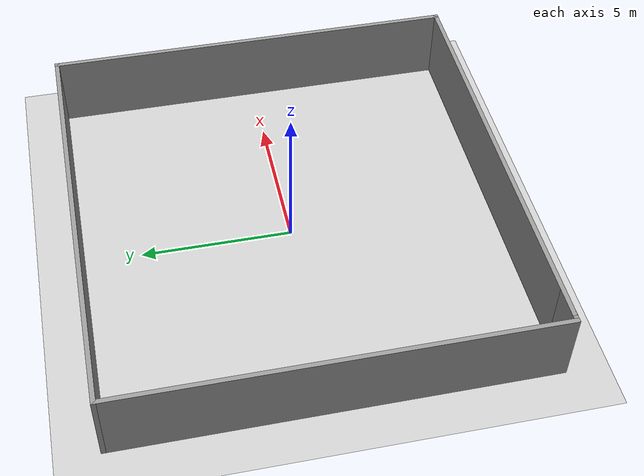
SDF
<sdf version="1.6">
 <world name="default">
  <light name="sun" type="directional">
   <pose>0 0 10 0 -0 0</pose>
   <diffuse>0.8 0.8 0.8 1</diffuse>
   <specular>0.2 0.2 0.2 1</specular>
   <attenuation>
    <range>1000</range>
    <constant>0.9</constant>
    <linear>0.01</linear>
    <quadratic>0.001</quadratic>
   </attenuation>
   <direction>-0.5 0.1 -0.9</direction>
  </light>
  <model name="ground_plane">
   <static>1</static>
   <link name="link">
    <collision name="collision">
     <geometry><plane><normal>0 0 1</normal><size>100 100</size></plane></geometry>
     <surface>
      <contact><collide_bitmask>65535</collide_bitmask></contact>
      <friction><ode><mu>100</mu><mu2>50</mu2></ode></friction>
     </surface>
    </collision>
    <visual name="visual">
     <cast_shadows>0</cast_shadows>
     <geometry><plane><normal>0 0 1</normal><size>100 100</size></plane></geometry>
     <material>
      <script><uri>file://media/materials/scripts/gazebo.material</uri><name>Gazebo/Grey</name></script>
     </material>
    </visual>
   </link>
  </model>
  <gravity>0 0 -9.8</gravity>
  <magnetic_field>6e-06 2.3e-05 -4.2e-05</magnetic_field>
  <atmosphere type="adiabatic"/>
  <physics name="default_physics" default="0" type="ode">
   <max_step_size>0.005</max_step_size>
   <real_time_factor>1</real_time_factor>
   <real_time_update_rate>0</real_time_update_rate>
  </physics>
  <scene><ambient>0.4 0.4 0.4 1</ambient><background>0.7 0.7 0.7 1</background><shadows>1</shadows></scene>
  <audio><device>default</device></audio>
  <spherical_coordinates>
   <surface_model>EARTH_WGS84</surface_model>
   <latitude_deg>0</latitude_deg>
   <longitude_deg>0</longitude_deg>
   <elevation>0</elevation>
   <heading_deg>0</heading_deg>
  </spherical_coordinates>
  <model name="7x7">
   <pose>0.044399 0.003118 0 0 -0 0</pose>
   <link name="Wall_0">
    <collision name="Wall_0_Collision">
     <geometry><box><size>14.25 0.15 2.5</size></box></geometry>
     <pose>0 0 1.25 0 -0 0</pose>
    </collision>
    <visual name="Wall_0_Visual">
     <pose>0 0 1.25 0 -0 0</pose>
     <geometry><box><size>14.25 0.15 2.5</size></box></geometry>
     <material>
      <script><uri>file://media/materials/scripts/gazebo.material</uri><name>Gazebo/Grey</name></script>
      <ambient>1 1 1 1</ambient>
     </material>
     <meta><layer>0</layer></meta>
    </visual>
    <pose>0.125 -6.925 0 0 -0 0</pose>
   </link>
   <link name="Wall_1">
    <collision name="Wall_1_Collision">
     <geometry><box><size>14 0.15 2.5</size></box></geometry>
     <pose>0 0 1.25 0 -0 0</pose>
    </collision>
    <visual name="Wall_1_Visual">
     <pose>0 0 1.25 0 -0 0</pose>
     <geometry><box><size>14 0.15 2.5</size></box></geometry>
     <material>
      <script><uri>file://media/materials/scripts/gazebo.material</uri><name>Gazebo/Grey</name></script>
      <ambient>1 1 1 1</ambient>
     </material>
     <meta><layer>0</layer></meta>
    </visual>
    <pose>7.175 0 0 0 -0 1.5708</pose>
   </link>
   <link name="Wall_2">
    <collision name="Wall_2_Collision">
     <geometry><box><size>14.5 0.15 2.5</size></box></geometry>
     <pose>0 0 1.25 0 -0 0</pose>
    </collision>
    <visual name="Wall_2_Visual">
     <pose>0 0 1.25 0 -0 0</pose>
     <geometry><box><size>14.5 0.15 2.5</size></box></geometry>
     <material>
      <script><uri>file://media/materials/scripts/gazebo.material</uri><name>Gazebo/Grey</name></script>
      <ambient>1 1 1 1</ambient>
     </material>
     <meta><layer>0</layer></meta>
    </visual>
    <pose>-0 6.925 0 0 -0 3.14159</pose>
   </link>
   <link name="Wall_3">
    <collision name="Wall_3_Collision">
     <geometry><box><size>14 0.15 2.5</size></box></geometry>
     <pose>0 0 1.25 0 -0 0</pose>
    </collision>
    <visual name="Wall_3_Visual">
     <pose>0 0 1.25 0 -0 0</pose>
     <geometry><box><size>14 0.15 2.5</size></box></geometry>
     <material>
      <script><uri>file://media/materials/scripts/gazebo.material</uri><name>Gazebo/Grey</name></script>
      <ambient>1 1 1 1</ambient>
     </material>
     <meta><layer>0</layer></meta>
    </visual>
    <pose>-7.175 0 0 0 -0 -1.5708</pose>
   </link>
   <link name="Wall_4">
    <collision name="Wall_4_Collision">
     <geometry><box><size>1.25 0.15 2.5</size></box></geometry>
     <pose>0 0 1.25 0 -0 0</pose>
    </collision>
    <visual name="Wall_4_Visual">
     <pose>0 0 1.25 0 -0 0</pose>
     <geometry><box><size>1.25 0.15 2.5</size></box></geometry>
     <material>
      <script><uri>file://media/materials/scripts/gazebo.material</uri><name>Gazebo/Grey</name></script>
      <ambient>1 1 1 1</ambient>
     </material>
     <meta><layer>0</layer></meta>
    </visual>
    <pose>-6.625 -6.925 0 0 -0 0</pose>
   </link>
   <static>1</static>
  </model>
 </world>
</sdf>
